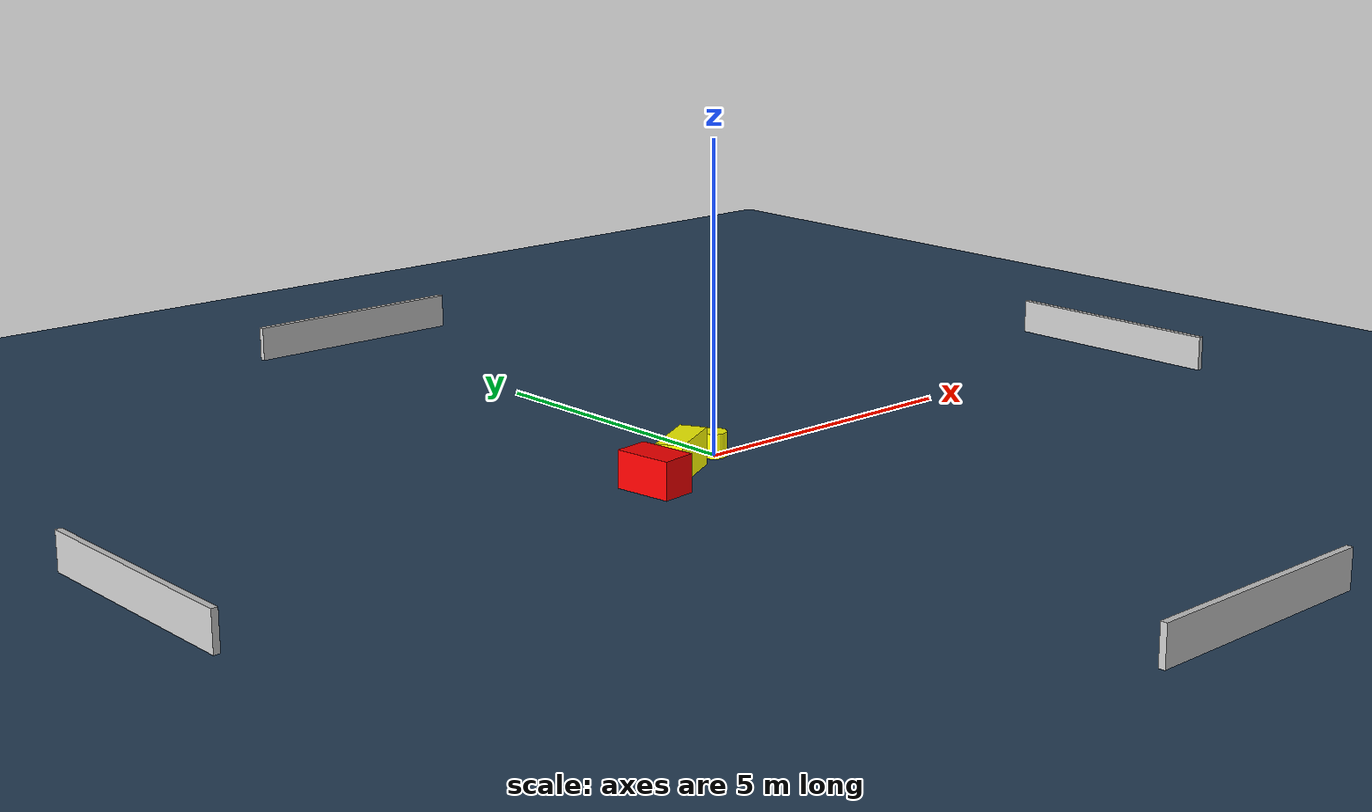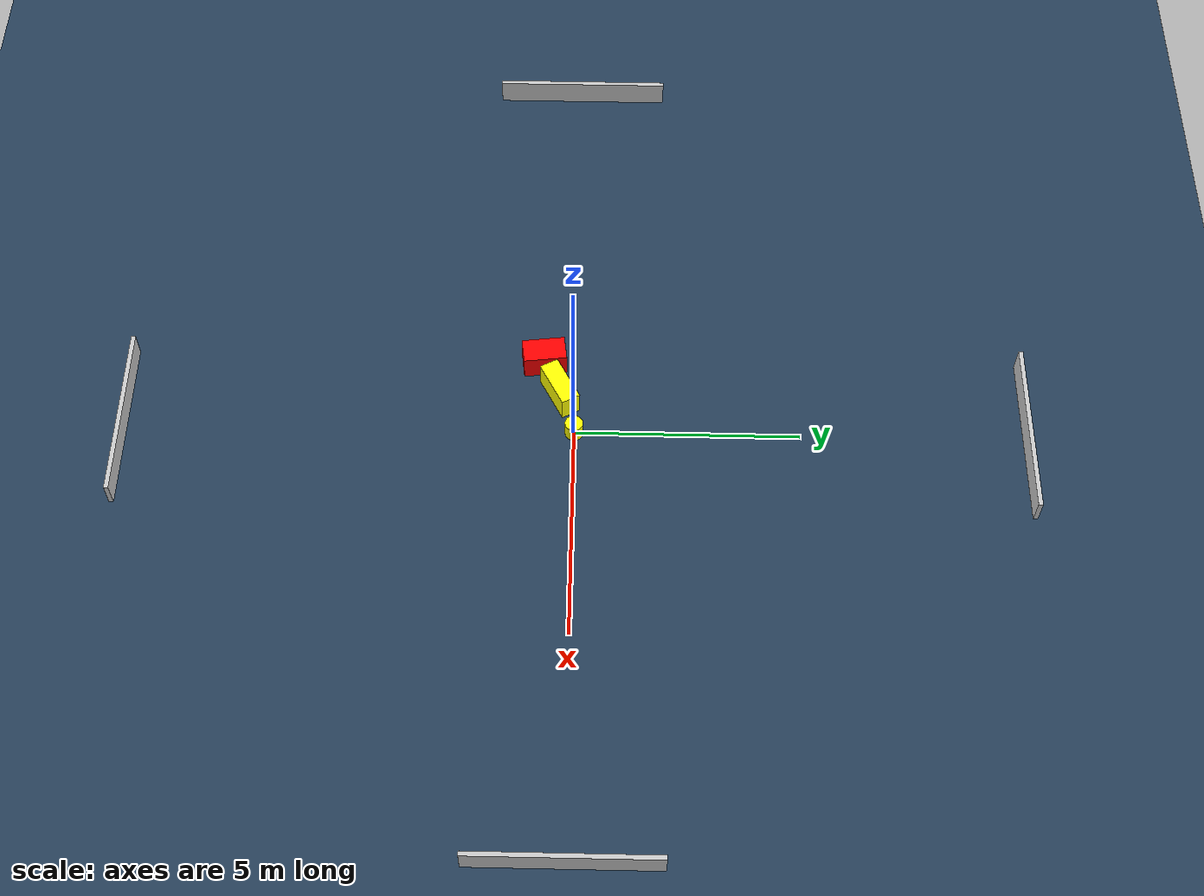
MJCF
<?xml version="1.0" ?>
<mujoco model="generated_environment">
  <option timestep="0.01" integrator="RK4" cone="elliptic"/>
  <default>
    <geom density="1"/>
  </default>
  <asset>
    <texture builtin="gradient" height="3072" name="skybox" rgb1="0.3 0.5 0.7" rgb2="0 0 0" type="skybox" width="512"/>
    <texture builtin="checker" height="300" name="groundplane" rgb1="0.2 0.3 0.4" rgb2="0.1 0.2 0.3" type="2d" width="300"/>
    <material name="groundplane" reflectance="0.2" texrepeat="5 5" texture="groundplane"/>
  </asset>
  <worldbody>
    <light dir="0 0 -1" directional="true" pos="0 0 1.5"/>
    <geom condim="3" friction="0.5 0.005 0.001" material="groundplane" name="floor" pos="0 0 0" size="0 0 0.05" type="plane"/>
    <body name="walls">
      <geom name="wall_1" condim="4" pos="-10.0 0.0 0.3" rgba="0.800000011920929 0.800000011920929 0.800000011920929 1.0" size="0.05 2.0 0.3" type="box"/>
      <geom name="wall_2" condim="4" pos="10.0 0.0 0.3" rgba="0.800000011920929 0.800000011920929 0.800000011920929 1.0" size="0.05 2.0 0.3" type="box"/>
      <geom name="wall_3" condim="4" pos="0.0 -10.0 0.3" rgba="0.800000011920929 0.800000011920929 0.800000011920929 1.0" size="2.0 0.05 0.3" type="box"/>
      <geom name="wall_4" condim="4" pos="0.0 10.0 0.3" rgba="0.800000011920929 0.800000011920929 0.800000011920929 1.0" size="2.0 0.05 0.3" type="box"/>
    </body>
    <body name="robot">
      <joint name="joint_x" type="slide" pos="0 0 0" axis="1 0 0"/>
      <joint name="joint_y" type="slide" pos="0 0 0" axis="0 1 0"/>
      <geom name="robot" type="cylinder" pos="0.0 0.0 0.2" size="0.2 0.2 0.0" mass="5.0" friction="1.0 0.005 0.0001" condim="4" rgba="1.0 1.0 0.0 1.0"/>
    </body>
    <body name="obstacle_1_movable">
      <geom name="obstacle_1_movable" condim="4" pos="-0.9911649226611932 -0.33569937160680696 0.3" euler="0 0 298.19627377326435" friction="0.0 0.005 0.001" rgba="1.0 1.0 0.0 1.0" size="0.21827765014358846 0.5483730446029772 0.3" type="box" mass="0.1"/>
      <joint type="free"/>
    </body>
    <body name="obstacle_2_static">
      <geom name="obstacle_2_static" condim="4" pos="-1.849617503403851 -0.7077417249334417 0.3" euler="0 0 276.95439346096725" friction="0.0 0.005 0.001" rgba="1.0 0.0 0.0 1.0" size="0.48169161412789574 0.28382616854282544 0.3" type="box"/>
    </body>
  </worldbody>
  <actuator>
    <motor name="actuator_x" joint="joint_x" gear="1" ctrlrange="-1 1"/>
    <motor name="actuator_y" joint="joint_y" gear="1" ctrlrange="-1 1"/>
  </actuator>
</mujoco>
